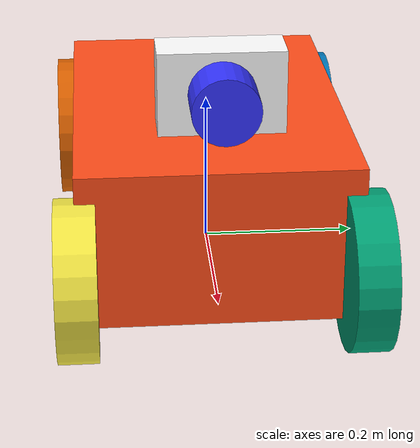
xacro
<?xml version="1.0"?>
<robot xmlns:xacro="http://www.ros.org/wiki/xacro"  name="greenguard">

    <!-- This is an example of a URDF. -->
    <!-- As we move through the file, new things to note will be pointed out. -->
    <!-- It's not meant an example of GOOD design, but an example of some of the various features of URDF/xacro. -->

    <!-- This will include all the contents of example_include.xacro first. Go check it out! -->
    <xacro:include filename="greenguard_include.xacro" />

    <!-- base_link is a large rectangular plate. Some things to note: -->
    <!-- - We set the visual origin Z to half the box height, so that the link origin sits at the bottom of the box -->
    <!-- - We set the collision to be identical to the visual -->
    <!-- - We specified the colour manually (but still need to enter a name) -->
    <!-- - We specified all the inertial parameters manually -->
    <xacro:property name="base_x" value="0.50"/>
    <xacro:property name="base_y" value="0.35"/>
    <xacro:property name="base_z" value="0.20"/>

    <xacro:property name="wheel_radius" value="0.1"/>
    <xacro:property name="wheel_width" value="0.05"/>

    <xacro:property name="velocity" value="100"/>
    <xacro:property name="effort"   value="100"/>
    <xacro:property name="wheel_mass"   value="1"/>

    <xacro:macro name="wheel"  params="name x y z wheel_radius wheel_width velocity effort mass">
        <link name="${name}_wheel_link">
            <visual>
                <geometry>
                    <cylinder radius="${wheel_radius}" length="${wheel_width}"/>
                </geometry>
            </visual>
            <collision>
                <geometry>
                    <cylinder length="${wheel_width}" radius="${wheel_radius}" />
                </geometry>
            </collision>
            <xacro:inertial_cylinder mass="1.0" length="${wheel_width}" radius="${wheel_radius}">
                <origin xyz="${wheel_width/2} 0 0" rpy="0 ${pi/2} 0"/>
            </xacro:inertial_cylinder>
        </link>
        <joint name="${name}_wheel_joint" type="continuous">
            <parent link="base_link"/>
            <child link="${name}_wheel_link"/>
            <origin xyz="${x} ${y} ${z}" rpy="${pi/2} ${pi/2} 0"/>
            <limit lower="-${pi}" upper="${pi}" velocity="${velocity}" effort="${effort}"/>
            <axis xyz="0 0 1"/>
        </joint>
    </xacro:macro>
    <link name="base_link">
        <visual>
            <origin xyz="0 0 ${base_z/2}" rpy="0 0 0"/>
            <geometry>
                <box size="${base_x} ${base_y} ${base_z}" />
            </geometry>
            <material name="orange"/>
        </visual>
        <collision>
            <origin xyz="0 0 ${base_z/2}" rpy="0 0 0"/>
            <geometry>
                <box size="${base_x} ${base_y} ${base_z}" />
            </geometry>
        </collision>
        <xacro:inertial_box mass="12" x="${base_x} " y="${base_y} " z="${base_z} ">
            <origin xyz="0 0 ${base_z/2}" rpy="0 0 0"/>
        </xacro:inertial_box>
    </link>

    <!-- IMU Sensor Definations -->
    <link name="imu_link">
        <visual>
            <geometry>
            <box size="0.1 0.1 0.1"/>
            </geometry>
        </visual>

        <collision>
            <geometry>
            <box size="0.1 0.1 0.1"/>
            </geometry>
        </collision>
        <xacro:inertial_box mass="0.1" x="0.12" y="0.15" z="0.15">
            <origin xyz="0.0 0 0" rpy="0 0 0"/>
        </xacro:inertial_box>
    </link>

    <joint name="imu_joint" type="fixed">
        <parent link="base_link"/>
        <child link="imu_link"/>
        <origin xyz="0 0 0.01"/>
    </joint>
    <!-- End of IMU Sensor Definations -->

    <xacro:wheel name="front_right" x="${base_x/2}" y="${base_y/2}" z="${base_z/3}" wheel_radius="${wheel_radius}" wheel_width="${wheel_width}" velocity="${velocity}" effort="${effort}" mass="${wheel_mass}"/>
    <xacro:wheel name="front_left" x="${base_x/2}" y="-${base_y/2}" z="${base_z/3}" wheel_radius="${wheel_radius}" wheel_width="${wheel_width}" velocity="${velocity}" effort="${effort}" mass="${wheel_mass}"/>
    <xacro:wheel name="rear_right" x="-${base_x/2}" y="${base_y/2}" z="${base_z/3}" wheel_radius="${wheel_radius}" wheel_width="${wheel_width}" velocity="${velocity}" effort="${effort}" mass="${wheel_mass}"/>
    <xacro:wheel name="rear_left" x="-${base_x/2}" y="-${base_y/2}" z="${base_z/3}" wheel_radius="${wheel_radius}" wheel_width="${wheel_width}" velocity="${velocity}" effort="${effort}" mass="${wheel_mass}"/>

        <!-- - camera_joint describes where the camera is relative to the arm -->
    <!-- - Even though the camera isn't moving relative to the arm, it will probably be helpful to have its own link/frame rather than just adding more visuals to the arm -->
    <!-- - For this example, the camera_link origin will be at the centre of the camera's "sensor" -->
    <joint name="camera_joint" type="fixed">
        <origin xyz="${base_x/2} 0 ${base_z + base_z/2}" rpy="0 0 0"/>
        <parent link="base_link"/>
        <child link="camera_link"/>
    </joint>

    <!-- - camera_link describes the camera at the end of the arm -->
    <!-- - It has multiple visual elements, which ultimately get combined together -->
    <!-- - Even if we specify different materials, RViz will just colour them all the same as the first -->
    <!-- - Although we could also specify multiple collision geometries, instead we just use a single box that encompasses the whole camera -->
    <link name="camera_link">
        <visual>
            <origin xyz="-0.03 0 0" rpy="0 0 0"/>
            <geometry>
                <box size="0.06 0.15 ${base_z/2}" />
            </geometry>
            <material name="white" />
        </visual>
        <visual>
            <origin xyz="0.03 0 0" rpy="0 ${pi/2} 0"/>
            <geometry>
                <cylinder length="0.06" radius="0.04" />
            </geometry>
            <material name="blue" />
        </visual>
        <collision>
            <origin xyz="0.0 0 0" rpy="0 0 0"/>
            <geometry>
                <box size="0.12 0.15 ${base_z/2}" />
            </geometry>
        </collision>
        <xacro:inertial_box mass="0.1" x="0.12" y="0.15" z="0.15">
            <origin xyz="0.0 0 0" rpy="0 0 0"/>
        </xacro:inertial_box>
    </link>

    <xacro:include filename="greenguard_gazebo.xacro" />

</robot>

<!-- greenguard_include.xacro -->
<robot xmlns:xacro="http://www.ros.org/wiki/xacro" >

    <!-- This file is not a robot in and of itself, it just contains some useful tags that could be included in any robot -->

    <!-- Specify some colours -->

    <material name="white">
        <color rgba="1 1 1 1"/>
    </material>

    <material name="orange">
        <color rgba="1 0.3 0.1 1"/>
    </material>

    <material name="blue">
        <color rgba="0.2 0.2 1 1"/>
    </material>

    <!-- Specify some standard inertial calculations https://en.wikipedia.org/wiki/List_of_moments_of_inertia -->
    <!-- These make use of xacro's mathematical functionality -->

    <xacro:macro name="inertial_sphere" params="mass radius *origin">
        <inertial>
            <xacro:insert_block name="origin"/>
            <mass value="${mass}" />
            <inertia ixx="${(2/5) * mass * (radius*radius)}" ixy="0.0" ixz="0.0"
                    iyy="${(2/5) * mass * (radius*radius)}" iyz="0.0"
                    izz="${(2/5) * mass * (radius*radius)}" />
        </inertial>
    </xacro:macro>

    <xacro:macro name="inertial_box" params="mass x y z *origin">
        <inertial>
            <xacro:insert_block name="origin"/>
            <mass value="${mass}" />
            <inertia ixx="${(1/12) * mass * (y*y+z*z)}" ixy="0.0" ixz="0.0"
                    iyy="${(1/12) * mass * (x*x+z*z)}" iyz="0.0"
                    izz="${(1/12) * mass * (x*x+y*y)}" />
        </inertial>
    </xacro:macro>

    <xacro:macro name="inertial_cylinder" params="mass length radius *origin">
        <inertial>
            <xacro:insert_block name="origin"/>
            <mass value="${mass}" />
            <inertia ixx="${(1/12) * mass * (3*radius*radius + length*length)}" ixy="0.0" ixz="0.0"
                    iyy="${(1/12) * mass * (3*radius*radius + length*length)}" iyz="0.0"
                    izz="${(1/2) * mass * (radius*radius)}" />
        </inertial>
    </xacro:macro>

</robot>

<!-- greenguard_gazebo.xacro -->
<robot xmlns:xacro="http://www.ros.org/wiki/xacro">

    <!-- To include it add the following line -->

    <!-- Instead, we need to add gazebo tags for our links that refer to Gazebo materials -->

    <gazebo reference="base_link">
        <material>Gazebo/Green</material>
    </gazebo>

    <gazebo reference="camera_link">
        <material>Gazebo/Blue</material>
    </gazebo>

    <!-- Gazebo requires the use of plugins to interact with other systems such as ROS. -->

    <!-- This plugin will publish the joint_states for the selected joints
            (which robot_state_publisher can then use to broadcast the approprate tf). -->

    <gazebo>
        <plugin name="gazebo_ros_joint_state_publisher"
            filename="libgazebo_ros_joint_state_publisher.so">
            <update_rate>10</update_rate>
            <joint_name>front_right_wheel_joint</joint_name>
            <joint_name>front_left_wheel_joint</joint_name>
            <joint_name>rear_right_wheel_joint</joint_name>
            <joint_name>rear_left_wheel_joint</joint_name>
        </plugin>
    </gazebo>

    <!-- This plugin will read a JointTrajectory message from the /set_joint_trajectory topic
            and move the machine accordingly. It's a bit clunky but it works. -->
    <gazebo>
        <plugin name="gazebo_ros_joint_pose_trajectory"
            filename="libgazebo_ros_joint_pose_trajectory.so">
            <update_rate>10</update_rate>
        </plugin>
    </gazebo>

    <!-- The next section shows an example of adding a sensor, in this case a depth camera. -->

    <!-- First, create the link and joint for the optical frame -->

    <joint name="camera_optical_joint" type="fixed">
        <origin xyz="0 0 0" rpy="-1.571 0 -1.571" />
        <parent link="camera_link" />
        <child link="camera_link_optical" />
    </joint>

    <link name="camera_link_optical"></link>

    <!-- Add a gazebo tag for the ORIGINAL camera_link (but in the plugin we reference the optical frame so that ROS can orient things correctly) -->
    <!-- Note that although visualise is set to true, it won't actually visualise the depth camera in gazebo. To see the preview,
            try swapping "depth" to "camera"-->

    <gazebo reference="imu_link">
        <sensor name="imu_sensor" type="imu">
        <plugin filename="libgazebo_ros_imu_sensor.so" name="imu_plugin">
            <ros>
                <namespace>/demo</namespace>
                <remapping>~/out:=imu</remapping>
            </ros>
            <initial_orientation_as_reference>false</initial_orientation_as_reference>
            </plugin>
            <always_on>true</always_on>
            <update_rate>100</update_rate>
            <visualize>true</visualize>
            <imu>
            <angular_velocity>
                <x>
                <noise type="gaussian">
                    <mean>0.0</mean>
                    <stddev>2e-4</stddev>
                    <bias_mean>0.0000075</bias_mean>
                    <bias_stddev>0.0000008</bias_stddev>
                </noise>
                </x>
                <y>
                <noise type="gaussian">
                    <mean>0.0</mean>
                    <stddev>2e-4</stddev>
                    <bias_mean>0.0000075</bias_mean>
                    <bias_stddev>0.0000008</bias_stddev>
                </noise>
                </y>
                <z>
                <noise type="gaussian">
                    <mean>0.0</mean>
                    <stddev>2e-4</stddev>
                    <bias_mean>0.0000075</bias_mean>
                    <bias_stddev>0.0000008</bias_stddev>
                </noise>
                </z>
            </angular_velocity>
            <linear_acceleration>
                <x>
                <noise type="gaussian">
                    <mean>0.0</mean>
                    <stddev>1.7e-2</stddev>
                    <bias_mean>0.1</bias_mean>
                    <bias_stddev>0.001</bias_stddev>
                </noise>
                </x>
                <y>
                <noise type="gaussian">
                    <mean>0.0</mean>
                    <stddev>1.7e-2</stddev>
                    <bias_mean>0.1</bias_mean>
                    <bias_stddev>0.001</bias_stddev>
                </noise>
                </y>
                <z>
                <noise type="gaussian">
                    <mean>0.0</mean>
                    <stddev>1.7e-2</stddev>
                    <bias_mean>0.1</bias_mean>
                    <bias_stddev>0.001</bias_stddev>
                </noise>
                </z>
            </linear_acceleration>
            </imu>
        </sensor>
    </gazebo>

    <gazebo reference="camera_link">
        <sensor type="depth" name="guard_cam">
            <update_rate>20</update_rate>
            <visualize>true</visualize>
            <camera name="cam">
                <horizontal_fov>1.3962634</horizontal_fov>
                <image>
                    <width>640</width>
                    <height>480</height>
                    <format>B8G8R8</format>
                </image>
                <clip>
                    <near>0.02</near>
                    <far>300</far>
                </clip>
                <noise>
                    <type>gaussian</type>
                    <mean>0.0</mean>
                    <stddev>0.007</stddev>
                </noise>
            </camera>
            <plugin name="camera_controller" filename="libgazebo_ros_camera.so">
                <frame_name>camera_link_optical</frame_name>
                <min_depth>0.1</min_depth>
                <max_depth>500</max_depth>
            </plugin>
        </sensor>
    </gazebo>

    <gazebo>
        <plugin filename="libgazebo_ros_diff_drive.so" name="skid_steer_drive">
            <ros>
                <namespace>/greenguard</namespace>
            </ros>
            <!-- Number of wheel pairs -->
            <num_wheel_pairs>2</num_wheel_pairs>
            <!-- wheels0 -->
            <left_joint>front_left_wheel_joint</left_joint>
            <right_joint>front_right_wheel_joint</right_joint>
            <!-- wheels1-->
            <left_joint>rear_left_wheel_joint</left_joint>
            <right_joint>rear_right_wheel_joint</right_joint>
            <!-- kinematics -->
            <wheel_separation>0.4</wheel_separation>
            <wheel_separation>0.4</wheel_separation>
            <wheel_diameter>0.2</wheel_diameter>
            <wheel_diameter>0.2</wheel_diameter>
            <!-- limits -->
            <max_wheel_torque>10</max_wheel_torque>
            <max_wheel_acceleration>1.0</max_wheel_acceleration>
            <!-- output -->
            <publish_odom>true</publish_odom>
            <publish_odom_tf>true</publish_odom_tf>
            <publish_wheel_tf>true</publish_wheel_tf>
            <odometry_frame>odom</odometry_frame>
            <robot_base_frame>base_link</robot_base_frame>
        </plugin>
    </gazebo>

</robot>
